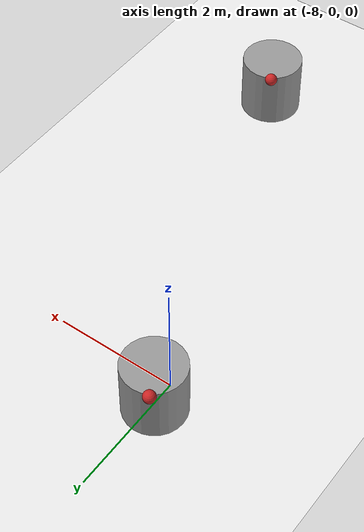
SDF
<sdf version="1.7">
 <world name="default">
  <model name="ground_plane">
   <static>1</static>
   <link name="link">
    <collision name="collision">
     <geometry><plane><normal>0 0 1</normal><size>100 100</size></plane></geometry>
     <surface>
      <contact><collide_bitmask>65535</collide_bitmask></contact>
      <friction><ode><mu>100</mu><mu2>50</mu2></ode></friction>
     </surface>
    </collision>
    <visual name="visual">
     <cast_shadows>0</cast_shadows>
     <geometry><plane><normal>0 0 1</normal><size>100 100</size></plane></geometry>
     <material>
      <script><uri>file://media/materials/scripts/gazebo.material</uri><name>Gazebo/White</name></script>
     </material>
    </visual>
   </link>
  </model>
  <model name="model5.1_6">
   <link name="link_1">
    <inertial>
     <mass>1</mass>
     <inertia><ixx>0.145833</ixx><ixy>0</ixy><ixz>0</ixz><iyy>0.145833</iyy><iyz>0</iyz><izz>0.125</izz></inertia>
    </inertial>
    <pose>0.135672 -0.23052 0 0 -0 0</pose>
    <visual name="visual">
     <geometry><cylinder><radius>0.5</radius><length>1</length></cylinder></geometry>
     <material>
      <lighting>1</lighting>
      <script><uri>file://media/materials/scripts/gazebo.material</uri><name>Gazebo/Grey</name></script>
      <shader type="pixel"/>
      <emissive>0 0 0 1</emissive>
     </material>
    </visual>
    <collision name="collision">
     <geometry><cylinder><radius>0.5</radius><length>1</length></cylinder></geometry>
     <surface>
      <friction>
       <ode><mu>1</mu><mu2>1</mu2><fdir1>0 0 0</fdir1><slip1>0</slip1><slip2>0</slip2></ode>
       <torsional>
        <coefficient>1</coefficient>
        <patch_radius>0</patch_radius>
        <surface_radius>0</surface_radius>
        <use_patch_radius>1</use_patch_radius>
        <ode><slip>0</slip></ode>
       </torsional>
      </friction>
      <bounce><restitution_coefficient>0</restitution_coefficient><threshold>1e+06</threshold></bounce>
      <contact>
       <collide_without_contact>0</collide_without_contact>
       <collide_without_contact_bitmask>1</collide_without_contact_bitmask>
       <collide_bitmask>1</collide_bitmask>
       <ode>
        <soft_cfm>0</soft_cfm>
        <soft_erp>0.2</soft_erp>
        <kp>1e+13</kp>
        <kd>1</kd>
        <max_vel>0.01</max_vel>
        <min_depth>0</min_depth>
       </ode>
       <bullet>
        <split_impulse>1</split_impulse>
        <split_impulse_penetration_threshold>-0.01</split_impulse_penetration_threshold>
        <soft_cfm>0</soft_cfm>
        <soft_erp>0.2</soft_erp>
        <kp>1e+13</kp>
        <kd>1</kd>
       </bullet>
      </contact>
     </surface>
    </collision>
   </link>
   <link name="link_2">
    <inertial>
     <mass>1</mass>
     <inertia><ixx>0.1</ixx><ixy>0</ixy><ixz>0</ixz><iyy>0.1</iyy><iyz>0</iyz><izz>0.1</izz></inertia>
    </inertial>
    <pose>-0.13567 0.230521 0.5 0 -0 0</pose>
    <visual name="visual">
     <geometry><sphere><radius>0.1</radius></sphere></geometry>
     <material>
      <lighting>1</lighting>
      <script><uri>file://media/materials/scripts/gazebo.material</uri><name>Gazebo/Red</name></script>
      <shader type="pixel"><normal_map>__default__</normal_map></shader>
      <ambient>0.3 0.3 0.3 1</ambient>
      <diffuse>0.7 0.7 0.7 1</diffuse>
      <specular>0.01 0.01 0.01 1</specular>
      <emissive>0 0 0 1</emissive>
     </material>
    </visual>
    <collision name="collision">
     <geometry><sphere><radius>0.1</radius></sphere></geometry>
     <surface>
      <friction>
       <ode><mu>1</mu><mu2>1</mu2><fdir1>0 0 0</fdir1><slip1>0</slip1><slip2>0</slip2></ode>
       <torsional>
        <coefficient>1</coefficient>
        <patch_radius>0</patch_radius>
        <surface_radius>0</surface_radius>
        <use_patch_radius>1</use_patch_radius>
        <ode><slip>0</slip></ode>
       </torsional>
      </friction>
      <bounce><restitution_coefficient>0</restitution_coefficient><threshold>1e+06</threshold></bounce>
      <contact>
       <collide_without_contact>0</collide_without_contact>
       <collide_without_contact_bitmask>1</collide_without_contact_bitmask>
       <collide_bitmask>1</collide_bitmask>
       <ode>
        <soft_cfm>0</soft_cfm>
        <soft_erp>0.2</soft_erp>
        <kp>1e+13</kp>
        <kd>1</kd>
        <max_vel>0.01</max_vel>
        <min_depth>0</min_depth>
       </ode>
       <bullet>
        <split_impulse>1</split_impulse>
        <split_impulse_penetration_threshold>-0.01</split_impulse_penetration_threshold>
        <soft_cfm>0</soft_cfm>
        <soft_erp>0.2</soft_erp>
        <kp>1e+13</kp>
        <kd>1</kd>
       </bullet>
      </contact>
     </surface>
    </collision>
   </link>
   <joint name="link_1_JOINT_0" type="revolute">
    <parent>link_1</parent>
    <child>link_2</child>
    <pose>0 0 0 0 0 -0.03</pose>
    <axis>
     <xyz>0 0 2</xyz>
     <limit>
      <lower>-1.79769e+308</lower>
      <upper>1.79769e+308</upper>
      <effort>-1</effort>
      <velocity>-1</velocity>
     </limit>
     <dynamics>
      <spring_reference>0</spring_reference>
      <spring_stiffness>0</spring_stiffness>
      <damping>0</damping>
     </dynamics>
    </axis>
    <physics>
     <ode><limit><cfm>0</cfm><erp>0.2</erp></limit><suspension><cfm>0</cfm><erp>0.2</erp></suspension></ode>
    </physics>
   </joint>
   <static>0</static>
   <pose>-8.17898 0.656521 0.5 0 0 -0.001483</pose>
  </model>
  <model name="model5.1_7">
   <link name="link_1">
    <inertial>
     <mass>1</mass>
     <inertia><ixx>0.145833</ixx><ixy>0</ixy><ixz>0</ixz><iyy>0.145833</iyy><iyz>0</iyz><izz>0.125</izz></inertia>
    </inertial>
    <pose>0.135672 -0.23052 0 0 -0 0</pose>
    <visual name="visual">
     <geometry><cylinder><radius>0.5</radius><length>1</length></cylinder></geometry>
     <material>
      <lighting>1</lighting>
      <script><uri>file://media/materials/scripts/gazebo.material</uri><name>Gazebo/Grey</name></script>
      <shader type="pixel"/>
      <emissive>0 0 0 1</emissive>
     </material>
    </visual>
    <collision name="collision">
     <geometry><cylinder><radius>0.5</radius><length>1</length></cylinder></geometry>
     <surface>
      <friction>
       <ode><mu>1</mu><mu2>1</mu2><fdir1>0 0 0</fdir1><slip1>0</slip1><slip2>0</slip2></ode>
       <torsional>
        <coefficient>1</coefficient>
        <patch_radius>0</patch_radius>
        <surface_radius>0</surface_radius>
        <use_patch_radius>1</use_patch_radius>
        <ode><slip>0</slip></ode>
       </torsional>
      </friction>
      <bounce><restitution_coefficient>0</restitution_coefficient><threshold>1e+06</threshold></bounce>
      <contact>
       <collide_without_contact>0</collide_without_contact>
       <collide_without_contact_bitmask>1</collide_without_contact_bitmask>
       <collide_bitmask>1</collide_bitmask>
       <ode>
        <soft_cfm>0</soft_cfm>
        <soft_erp>0.2</soft_erp>
        <kp>1e+13</kp>
        <kd>1</kd>
        <max_vel>0.01</max_vel>
        <min_depth>0</min_depth>
       </ode>
       <bullet>
        <split_impulse>1</split_impulse>
        <split_impulse_penetration_threshold>-0.01</split_impulse_penetration_threshold>
        <soft_cfm>0</soft_cfm>
        <soft_erp>0.2</soft_erp>
        <kp>1e+13</kp>
        <kd>1</kd>
       </bullet>
      </contact>
     </surface>
    </collision>
   </link>
   <link name="link_2">
    <inertial>
     <mass>1</mass>
     <inertia><ixx>0.1</ixx><ixy>0</ixy><ixz>0</ixz><iyy>0.1</iyy><iyz>0</iyz><izz>0.1</izz></inertia>
    </inertial>
    <pose>-0.13567 0.230521 0.5 0 -0 0</pose>
    <visual name="visual">
     <geometry><sphere><radius>0.1</radius></sphere></geometry>
     <material>
      <lighting>1</lighting>
      <script><uri>file://media/materials/scripts/gazebo.material</uri><name>Gazebo/Red</name></script>
      <shader type="pixel"><normal_map>__default__</normal_map></shader>
      <ambient>0.3 0.3 0.3 1</ambient>
      <diffuse>0.7 0.7 0.7 1</diffuse>
      <specular>0.01 0.01 0.01 1</specular>
      <emissive>0 0 0 1</emissive>
     </material>
    </visual>
    <collision name="collision">
     <geometry><sphere><radius>0.1</radius></sphere></geometry>
     <surface>
      <friction>
       <ode><mu>1</mu><mu2>1</mu2><fdir1>0 0 0</fdir1><slip1>0</slip1><slip2>0</slip2></ode>
       <torsional>
        <coefficient>1</coefficient>
        <patch_radius>0</patch_radius>
        <surface_radius>0</surface_radius>
        <use_patch_radius>1</use_patch_radius>
        <ode><slip>0</slip></ode>
       </torsional>
      </friction>
      <bounce><restitution_coefficient>0</restitution_coefficient><threshold>1e+06</threshold></bounce>
      <contact>
       <collide_without_contact>0</collide_without_contact>
       <collide_without_contact_bitmask>1</collide_without_contact_bitmask>
       <collide_bitmask>1</collide_bitmask>
       <ode>
        <soft_cfm>0</soft_cfm>
        <soft_erp>0.2</soft_erp>
        <kp>1e+13</kp>
        <kd>1</kd>
        <max_vel>0.01</max_vel>
        <min_depth>0</min_depth>
       </ode>
       <bullet>
        <split_impulse>1</split_impulse>
        <split_impulse_penetration_threshold>-0.01</split_impulse_penetration_threshold>
        <soft_cfm>0</soft_cfm>
        <soft_erp>0.2</soft_erp>
        <kp>1e+13</kp>
        <kd>1</kd>
       </bullet>
      </contact>
     </surface>
    </collision>
   </link>
   <joint name="link_1_JOINT_0" type="revolute">
    <parent>link_1</parent>
    <child>link_2</child>
    <pose>0 0 0 0 0 -0.03</pose>
    <axis>
     <xyz>0 0 2</xyz>
     <limit>
      <lower>-1.79769e+308</lower>
      <upper>1.79769e+308</upper>
      <effort>-1</effort>
      <velocity>-1</velocity>
     </limit>
     <dynamics>
      <spring_reference>0</spring_reference>
      <spring_stiffness>0</spring_stiffness>
      <damping>0</damping>
     </dynamics>
    </axis>
    <physics>
     <ode><limit><cfm>0</cfm><erp>0.2</erp></limit><suspension><cfm>0</cfm><erp>0.2</erp></suspension></ode>
    </physics>
   </joint>
   <static>0</static>
   <pose>-5.96807 -5.65288 0.5 0 0 -0.001462</pose>
  </model>
 </world>
</sdf>
